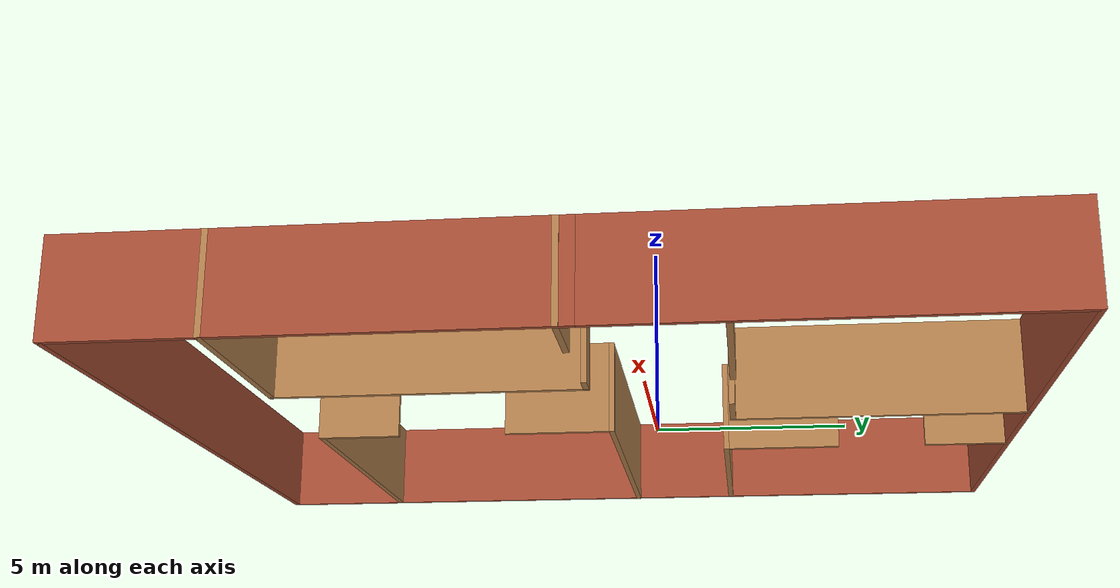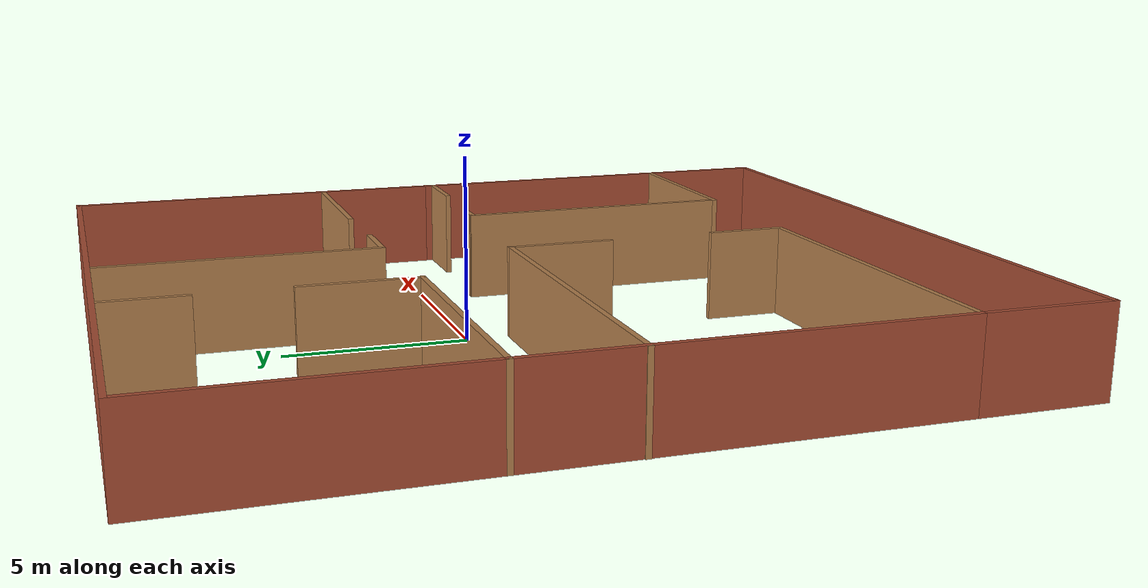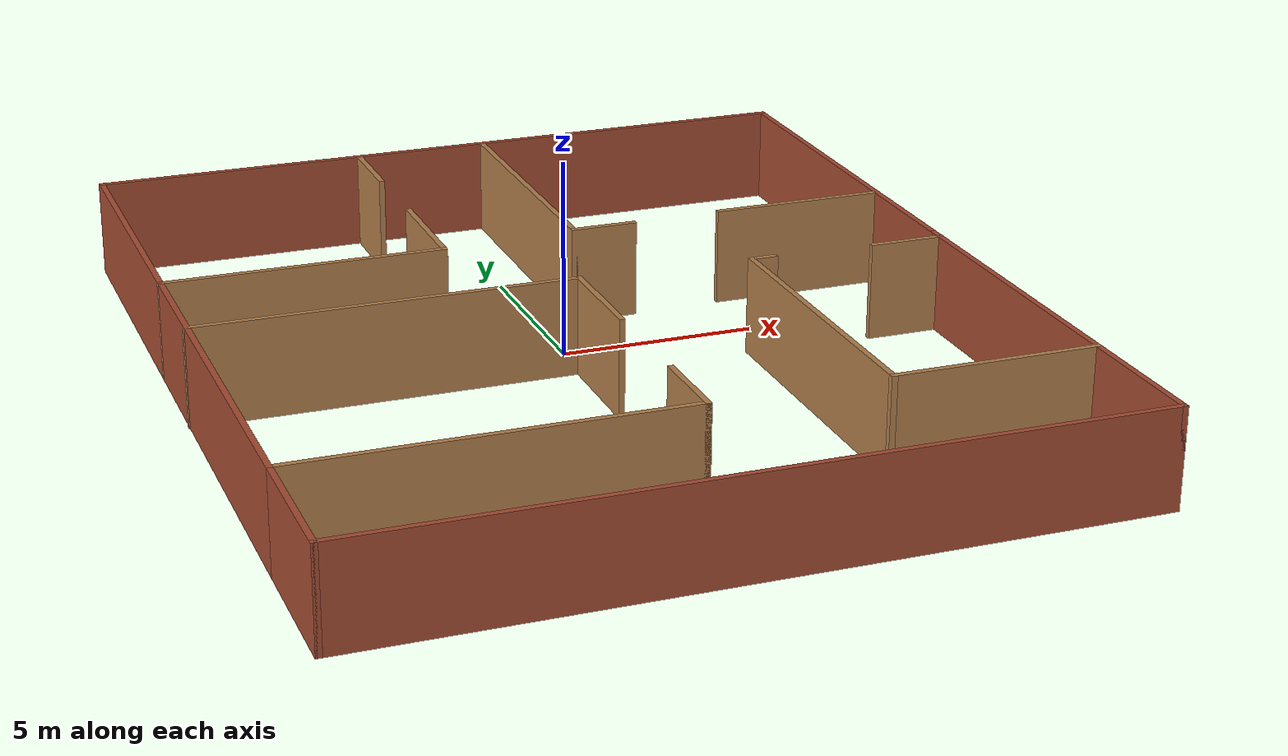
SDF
<?xml version='1.0'?>
<sdf version='1.6'>
  <model name='FetchENV'>
    <pose frame=''>-0.059441 -1.62162 0 0 -0 0</pose>
    <link name='Wall_100'>
      <collision name='Wall_100_Collision'>
        <geometry>
          <box>
            <size>8 0.15 2.5</size>
          </box>
        </geometry>
        <pose frame=''>0 0 1.25 0 -0 0</pose>
      </collision>
      <visual name='Wall_100_Visual'>
        <pose frame=''>0 0 1.25 0 -0 0</pose>
        <geometry>
          <box>
            <size>8 0.15 2.5</size>
          </box>
        </geometry>
        <material>
          <script>
            <uri>file://media/materials/scripts/gazebo.material</uri>
            <name>Gazebo/Bricks</name>
          </script>
          <ambient>1 1 1 1</ambient>
        </material>
        <meta>
          <layer>0</layer>
        </meta>
      </visual>
      <pose frame=''>-9.54309 7.35 0 0 -0 1.5708</pose>
    </link>
    <link name='Wall_101'>
      <collision name='Wall_101_Collision'>
        <geometry>
          <box>
            <size>19.25 0.15 2.5</size>
          </box>
        </geometry>
        <pose frame=''>0 0 1.25 0 -0 0</pose>
      </collision>
      <visual name='Wall_101_Visual'>
        <pose frame=''>0 0 1.25 0 -0 0</pose>
        <geometry>
          <box>
            <size>19.25 0.15 2.5</size>
          </box>
        </geometry>
        <material>
          <script>
            <uri>file://media/materials/scripts/gazebo.material</uri>
            <name>Gazebo/Bricks</name>
          </script>
          <ambient>1 1 1 1</ambient>
        </material>
        <meta>
          <layer>0</layer>
        </meta>
      </visual>
      <pose frame=''>0.006908 11.275 0 0 -0 0</pose>
    </link>
    <link name='Wall_102'>
      <collision name='Wall_102_Collision'>
        <geometry>
          <box>
            <size>11 0.15 2.5</size>
          </box>
        </geometry>
        <pose frame=''>0 0 1.25 0 -0 0</pose>
      </collision>
      <visual name='Wall_102_Visual'>
        <pose frame=''>0 0 1.25 0 -0 0</pose>
        <geometry>
          <box>
            <size>11 0.15 2.5</size>
          </box>
        </geometry>
        <material>
          <script>
            <uri>file://media/materials/scripts/gazebo.material</uri>
            <name>Gazebo/Bricks</name>
          </script>
          <ambient>1 1 1 1</ambient>
        </material>
        <meta>
          <layer>0</layer>
        </meta>
      </visual>
      <pose frame=''>9.55691 5.85 0 0 -0 -1.5708</pose>
    </link>
    <link name='Wall_103'>
      <collision name='Wall_103_Collision'>
        <geometry>
          <box>
            <size>8.25 0.15 2.5</size>
          </box>
        </geometry>
        <pose frame=''>0 0 1.25 0 -0 0</pose>
      </collision>
      <visual name='Wall_103_Visual'>
        <pose frame=''>0 0 1.25 0 -0 0</pose>
        <geometry>
          <box>
            <size>8.25 0.15 2.5</size>
          </box>
        </geometry>
        <material>
          <script>
            <uri>file://media/materials/scripts/gazebo.material</uri>
            <name>Gazebo/Bricks</name>
          </script>
          <ambient>1 1 1 1</ambient>
        </material>
        <meta>
          <layer>0</layer>
        </meta>
      </visual>
      <pose frame=''>9.55691 -3.625 0 0 -0 -1.5708</pose>
    </link>
    <link name='Wall_104'>
      <collision name='Wall_104_Collision'>
        <geometry>
          <box>
            <size>5.25 0.15 2.5</size>
          </box>
        </geometry>
        <pose frame=''>0 0 1.25 0 -0 0</pose>
      </collision>
      <visual name='Wall_104_Visual'>
        <pose frame=''>0 0 1.25 0 -0 0</pose>
        <geometry>
          <box>
            <size>5.25 0.15 2.5</size>
          </box>
        </geometry>
        <material>
          <script>
            <uri>file://media/materials/scripts/gazebo.material</uri>
            <name>Gazebo/Wood</name>
          </script>
          <ambient>1 1 1 1</ambient>
        </material>
        <meta>
          <layer>0</layer>
        </meta>
      </visual>
      <pose frame=''>7.00691 -7.675 0 0 -0 3.14159</pose>
    </link>
    <link name='Wall_108'>
      <collision name='Wall_108_Collision'>
        <geometry>
          <box>
            <size>11.25 0.15 2.5</size>
          </box>
        </geometry>
        <pose frame=''>0 0 1.25 0 -0 0</pose>
      </collision>
      <visual name='Wall_108_Visual'>
        <pose frame=''>0 0 1.25 0 -0 0</pose>
        <geometry>
          <box>
            <size>11.25 0.15 2.5</size>
          </box>
        </geometry>
        <material>
          <script>
            <uri>file://media/materials/scripts/gazebo.material</uri>
            <name>Gazebo/Bricks</name>
          </script>
          <ambient>1 1 1 1</ambient>
        </material>
        <meta>
          <layer>0</layer>
        </meta>
      </visual>
      <pose frame=''>-9.54309 -2.125 0 0 -0 -1.5708</pose>
    </link>
    <link name='Wall_109'>
      <collision name='Wall_109_Collision'>
        <geometry>
          <box>
            <size>9.75 0.15 2.5</size>
          </box>
        </geometry>
        <pose frame=''>0 0 1.25 0 -0 0</pose>
      </collision>
      <visual name='Wall_109_Visual'>
        <pose frame=''>0 0 1.25 0 -0 0</pose>
        <geometry>
          <box>
            <size>9.75 0.15 2.5</size>
          </box>
        </geometry>
        <material>
          <script>
            <uri>file://media/materials/scripts/gazebo.material</uri>
            <name>Gazebo/Wood</name>
          </script>
          <ambient>1 1 1 1</ambient>
        </material>
        <meta>
          <layer>0</layer>
        </meta>
      </visual>
      <pose frame=''>-4.74309 -7.675 0 0 -0 0</pose>
    </link>
    <link name='Wall_111'>
      <collision name='Wall_111_Collision'>
        <geometry>
          <box>
            <size>2.25 0.15 2.5</size>
          </box>
        </geometry>
        <pose frame=''>0 0 1.25 0 -0 0</pose>
      </collision>
      <visual name='Wall_111_Visual'>
        <pose frame=''>0 0 1.25 0 -0 0</pose>
        <geometry>
          <box>
            <size>2.25 0.15 2.5</size>
          </box>
        </geometry>
        <material>
          <script>
            <uri>file://media/materials/scripts/gazebo.material</uri>
            <name>Gazebo/Wood</name>
          </script>
          <ambient>1 1 1 1</ambient>
        </material>
        <meta>
          <layer>0</layer>
        </meta>
      </visual>
      <pose frame=''>0.056908 -6.625 0 0 -0 1.5708</pose>
    </link>
    <link name='Wall_113'>
      <collision name='Wall_113_Collision'>
        <geometry>
          <box>
            <size>3 0.15 2.5</size>
          </box>
        </geometry>
        <pose frame=''>0 0 1.25 0 -0 0</pose>
      </collision>
      <visual name='Wall_113_Visual'>
        <pose frame=''>0 0 1.25 0 -0 0</pose>
        <geometry>
          <box>
            <size>3 0.15 2.5</size>
          </box>
        </geometry>
        <material>
          <script>
            <uri>file://media/materials/scripts/gazebo.material</uri>
            <name>Gazebo/Wood</name>
          </script>
          <ambient>1 1 1 1</ambient>
        </material>
        <meta>
          <layer>0</layer>
        </meta>
      </visual>
      <pose frame=''>0.03172 -1.04948 0 0 -0 1.5708</pose>
    </link>
    <link name='Wall_114'>
      <collision name='Wall_114_Collision'>
        <geometry>
          <box>
            <size>9.75 0.15 2.5</size>
          </box>
        </geometry>
        <pose frame=''>0 0 1.25 0 -0 0</pose>
      </collision>
      <visual name='Wall_114_Visual'>
        <pose frame=''>0 0 1.25 0 -0 0</pose>
        <geometry>
          <box>
            <size>9.75 0.15 2.5</size>
          </box>
        </geometry>
        <material>
          <script>
            <uri>file://media/materials/scripts/gazebo.material</uri>
            <name>Gazebo/Wood</name>
          </script>
          <ambient>1 1 1 1</ambient>
        </material>
        <meta>
          <layer>0</layer>
        </meta>
      </visual>
      <pose frame=''>-4.76828 0.375517 0 0 -0 3.14159</pose>
    </link>
    <link name='Wall_116'>
      <collision name='Wall_116_Collision'>
        <geometry>
          <box>
            <size>8 0.15 2.5</size>
          </box>
        </geometry>
        <pose frame=''>0 0 1.25 0 -0 0</pose>
      </collision>
      <visual name='Wall_116_Visual'>
        <pose frame=''>0 0 1.25 0 -0 0</pose>
        <geometry>
          <box>
            <size>8 0.15 2.5</size>
          </box>
        </geometry>
        <material>
          <script>
            <uri>file://media/materials/scripts/gazebo.material</uri>
            <name>Gazebo/Wood</name>
          </script>
          <ambient>1 1 1 1</ambient>
        </material>
        <meta>
          <layer>0</layer>
        </meta>
      </visual>
      <pose frame=''>4.45691 -3.75 0 0 -0 1.5708</pose>
    </link>
    <link name='Wall_120'>
      <collision name='Wall_120_Collision'>
        <geometry>
          <box>
            <size>0.75 0.15 2.5</size>
          </box>
        </geometry>
        <pose frame=''>0 0 1.25 0 -0 0</pose>
      </collision>
      <visual name='Wall_120_Visual'>
        <pose frame=''>0 0 1.25 0 -0 0</pose>
        <geometry>
          <box>
            <size>0.75 0.15 2.5</size>
          </box>
        </geometry>
        <material>
          <script>
            <uri>file://media/materials/scripts/gazebo.material</uri>
            <name>Gazebo/Wood</name>
          </script>
          <ambient>1 1 1 1</ambient>
        </material>
        <meta>
          <layer>0</layer>
        </meta>
      </visual>
      <pose frame=''>4.75691 0.175 0 0 -0 0</pose>
    </link>
    <link name='Wall_122'>
      <collision name='Wall_122_Collision'>
        <geometry>
          <box>
            <size>2 0.15 2.5</size>
          </box>
        </geometry>
        <pose frame=''>0 0 1.25 0 -0 0</pose>
      </collision>
      <visual name='Wall_122_Visual'>
        <pose frame=''>0 0 1.25 0 -0 0</pose>
        <geometry>
          <box>
            <size>2 0.15 2.5</size>
          </box>
        </geometry>
        <material>
          <script>
            <uri>file://media/materials/scripts/gazebo.material</uri>
            <name>Gazebo/Wood</name>
          </script>
          <ambient>1 1 1 1</ambient>
        </material>
        <meta>
          <layer>0</layer>
        </meta>
      </visual>
      <pose frame=''>8.64328 0.074218 0 0 -0 0</pose>
    </link>
    <link name='Wall_126'>
      <collision name='Wall_126_Collision'>
        <geometry>
          <box>
            <size>2.25 0.15 2.5</size>
          </box>
        </geometry>
        <pose frame=''>0 0 1.25 0 -0 0</pose>
      </collision>
      <visual name='Wall_126_Visual'>
        <pose frame=''>0 0 1.25 0 -0 0</pose>
        <geometry>
          <box>
            <size>2.25 0.15 2.5</size>
          </box>
        </geometry>
        <material>
          <script>
            <uri>file://media/materials/scripts/gazebo.material</uri>
            <name>Gazebo/Wood</name>
          </script>
          <ambient>1 1 1 1</ambient>
        </material>
        <meta>
          <layer>0</layer>
        </meta>
      </visual>
      <pose frame=''>-2.47722 10.1244 0 0 -0 -1.5708</pose>
    </link>
    <link name='Wall_128'>
      <collision name='Wall_128_Collision'>
        <geometry>
          <box>
            <size>7.75 0.15 2.5</size>
          </box>
        </geometry>
        <pose frame=''>0 0 1.25 0 -0 0</pose>
      </collision>
      <visual name='Wall_128_Visual'>
        <pose frame=''>0 0 1.25 0 -0 0</pose>
        <geometry>
          <box>
            <size>7.75 0.15 2.5</size>
          </box>
        </geometry>
        <material>
          <script>
            <uri>file://media/materials/scripts/gazebo.material</uri>
            <name>Gazebo/Wood</name>
          </script>
          <ambient>1 1 1 1</ambient>
        </material>
        <meta>
          <layer>0</layer>
        </meta>
      </visual>
      <pose frame=''>1.0586 7.46742 0 0 -0 -1.5708</pose>
    </link>
    <link name='Wall_129'>
      <collision name='Wall_129_Collision'>
        <geometry>
          <box>
            <size>1.75 0.15 2.5</size>
          </box>
        </geometry>
        <pose frame=''>0 0 1.25 0 -0 0</pose>
      </collision>
      <visual name='Wall_129_Visual'>
        <pose frame=''>0 0 1.25 0 -0 0</pose>
        <geometry>
          <box>
            <size>1.75 0.15 2.5</size>
          </box>
        </geometry>
        <material>
          <script>
            <uri>file://media/materials/scripts/gazebo.material</uri>
            <name>Gazebo/Wood</name>
          </script>
          <ambient>1 1 1 1</ambient>
        </material>
        <meta>
          <layer>0</layer>
        </meta>
      </visual>
      <pose frame=''>1.8586 3.66742 0 0 -0 0</pose>
    </link>
    <link name='Wall_131'>
      <collision name='Wall_131_Collision'>
        <geometry>
          <box>
            <size>4.5 0.15 2.5</size>
          </box>
        </geometry>
        <pose frame=''>0 0 1.25 0 -0 0</pose>
      </collision>
      <visual name='Wall_131_Visual'>
        <pose frame=''>0 0 1.25 0 -0 0</pose>
        <geometry>
          <box>
            <size>4.5 0.15 2.5</size>
          </box>
        </geometry>
        <material>
          <script>
            <uri>file://media/materials/scripts/gazebo.material</uri>
            <name>Gazebo/Wood</name>
          </script>
          <ambient>1 1 1 1</ambient>
        </material>
        <meta>
          <layer>0</layer>
        </meta>
      </visual>
      <pose frame=''>7.2579 3.73055 0 0 -0 3.14159</pose>
    </link>
    <link name='Wall_140'>
      <collision name='Wall_140_Collision'>
        <geometry>
          <box>
            <size>3.75 0.15 2.5</size>
          </box>
        </geometry>
        <pose frame=''>0 0 1.25 0 -0 0</pose>
      </collision>
      <visual name='Wall_140_Visual'>
        <pose frame=''>0 0 1.25 0 -0 0</pose>
        <geometry>
          <box>
            <size>3.75 0.15 2.5</size>
          </box>
        </geometry>
        <material>
          <script>
            <uri>file://media/materials/scripts/gazebo.material</uri>
            <name>Gazebo/Bricks</name>
          </script>
          <ambient>1 1 1 1</ambient>
        </material>
        <meta>
          <layer>0</layer>
        </meta>
      </visual>
      <pose frame=''>-9.54309 -9.475 0 0 -0 -1.5708</pose>
    </link>
    <link name='Wall_141'>
      <collision name='Wall_141_Collision'>
        <geometry>
          <box>
            <size>19.25 0.15 2.5</size>
          </box>
        </geometry>
        <pose frame=''>0 0 1.25 0 -0 0</pose>
      </collision>
      <visual name='Wall_141_Visual'>
        <pose frame=''>0 0 1.25 0 -0 0</pose>
        <geometry>
          <box>
            <size>19.25 0.15 2.5</size>
          </box>
        </geometry>
        <material>
          <script>
            <uri>file://media/materials/scripts/gazebo.material</uri>
            <name>Gazebo/Bricks</name>
          </script>
          <ambient>1 1 1 1</ambient>
        </material>
        <meta>
          <layer>0</layer>
        </meta>
      </visual>
      <pose frame=''>0.006908 -11.275 0 0 -0 0</pose>
    </link>
    <link name='Wall_143'>
      <collision name='Wall_143_Collision'>
        <geometry>
          <box>
            <size>3.75 0.15 2.5</size>
          </box>
        </geometry>
        <pose frame=''>0 0 1.25 0 -0 0</pose>
      </collision>
      <visual name='Wall_143_Visual'>
        <pose frame=''>0 0 1.25 0 -0 0</pose>
        <geometry>
          <box>
            <size>3.75 0.15 2.5</size>
          </box>
        </geometry>
        <material>
          <script>
            <uri>file://media/materials/scripts/gazebo.material</uri>
            <name>Gazebo/Bricks</name>
          </script>
          <ambient>1 1 1 1</ambient>
        </material>
        <meta>
          <layer>0</layer>
        </meta>
      </visual>
      <pose frame=''>9.55691 -9.475 0 0 -0 1.5708</pose>
    </link>
    <link name='Wall_98'>
      <collision name='Wall_98_Collision'>
        <geometry>
          <box>
            <size>3.25 0.15 2.5</size>
          </box>
        </geometry>
        <pose frame=''>0 0 1.25 0 -0 0</pose>
      </collision>
      <visual name='Wall_98_Visual'>
        <pose frame=''>0 0 1.25 0 -0 0</pose>
        <geometry>
          <box>
            <size>3.25 0.15 2.5</size>
          </box>
        </geometry>
        <material>
          <script>
            <uri>file://media/materials/scripts/gazebo.material</uri>
            <name>Gazebo/Wood</name>
          </script>
          <ambient>1 1 1 1</ambient>
        </material>
        <meta>
          <layer>0</layer>
        </meta>
      </visual>
      <pose frame=''>-2.44309 4.975 0 0 -0 -1.5708</pose>
    </link>
    <link name='Wall_99'>
      <collision name='Wall_99_Collision'>
        <geometry>
          <box>
            <size>7.25 0.15 2.5</size>
          </box>
        </geometry>
        <pose frame=''>0 0 1.25 0 -0 0</pose>
      </collision>
      <visual name='Wall_99_Visual'>
        <pose frame=''>0 0 1.25 0 -0 0</pose>
        <geometry>
          <box>
            <size>7.25 0.15 2.5</size>
          </box>
        </geometry>
        <material>
          <script>
            <uri>file://media/materials/scripts/gazebo.material</uri>
            <name>Gazebo/Wood</name>
          </script>
          <ambient>1 1 1 1</ambient>
        </material>
        <meta>
          <layer>0</layer>
        </meta>
      </visual>
      <pose frame=''>-5.99309 3.425 0 0 -0 3.14159</pose>
    </link>
    <static>1</static>
  </model>
</sdf>
